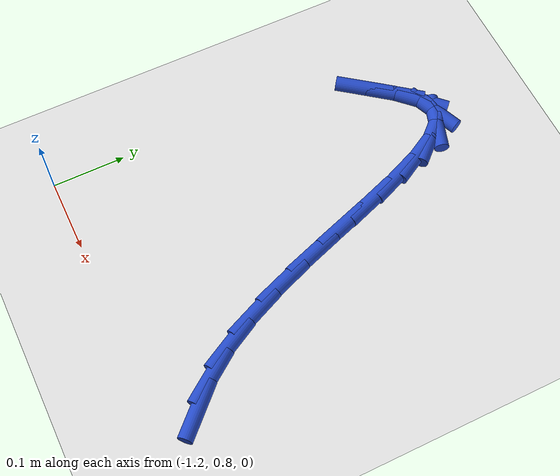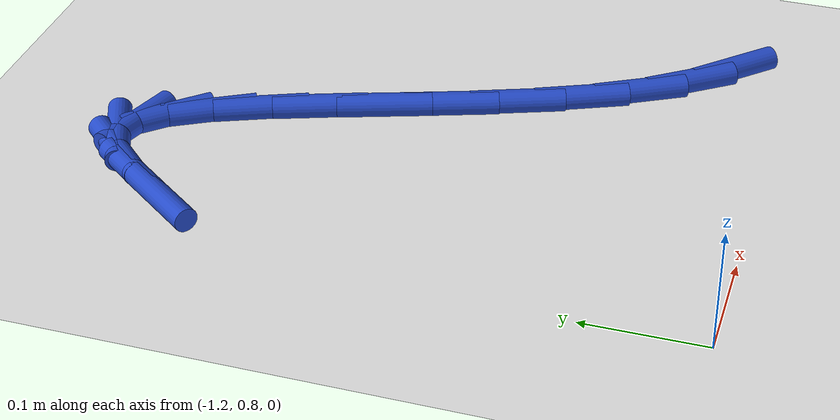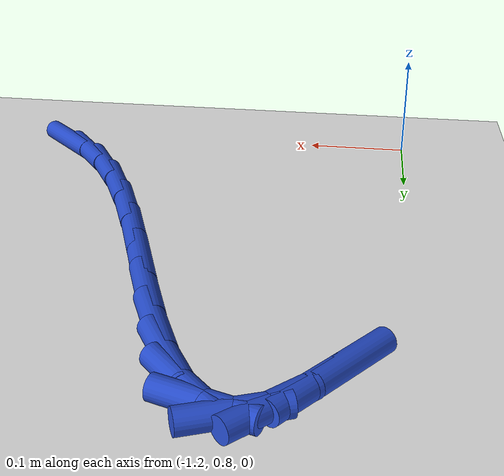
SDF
<sdf version="1.6">
 <world name="default">
  <model name="ground_plane">
   <static>1</static>
   <link name="link">
    <collision name="collision">
     <geometry><plane><normal>0 0 1</normal><size>100 100</size></plane></geometry>
     <surface><friction><ode><mu>100</mu><mu2>50</mu2></ode></friction></surface>
    </collision>
    <visual name="visual">
     <cast_shadows>0</cast_shadows>
     <geometry><plane><normal>0 0 1</normal><size>100 100</size></plane></geometry>
     <material>
      <script><uri>file://media/materials/scripts/gazebo.material</uri><name>Gazebo/WhiteGlow</name></script>
     </material>
    </visual>
   </link>
  </model>
  <model name="line">
   <link name="link_32">
    <pose>-0.8336543651550772 0.8481027196171774 0.01 0 1.57 -0.79891214269424</pose>
    <collision name="collision">
     <geometry><cylinder><radius>0.01</radius><length>0.08</length></cylinder></geometry>
    </collision>
    <visual name="visual">
     <material>
      <script><name>Gazebo/Blue</name><uri>file://media/materials/scripts/gazebo.material</uri></script>
     </material>
     <geometry><cylinder><radius>0.01</radius><length>0.08</length></cylinder></geometry>
    </visual>
   </link>
   <link name="link_33">
    <pose>-0.8642289517151212 0.8795150470484041 0.01 0 1.57 -0.9451556518203059</pose>
    <collision name="collision">
     <geometry><cylinder><radius>0.01</radius><length>0.08</length></cylinder></geometry>
    </collision>
    <visual name="visual">
     <material>
      <script><name>Gazebo/Blue</name><uri>file://media/materials/scripts/gazebo.material</uri></script>
     </material>
     <geometry><cylinder><radius>0.01</radius><length>0.08</length></cylinder></geometry>
    </visual>
   </link>
   <link name="link_34">
    <pose>-0.8918520325826715 0.9177498512966816 0.01 0 1.57 -1.0721236686585107</pose>
    <collision name="collision">
     <geometry><cylinder><radius>0.01</radius><length>0.08</length></cylinder></geometry>
    </collision>
    <visual name="visual">
     <material>
      <script><name>Gazebo/Blue</name><uri>file://media/materials/scripts/gazebo.material</uri></script>
     </material>
     <geometry><cylinder><radius>0.01</radius><length>0.08</length></cylinder></geometry>
    </visual>
   </link>
   <link name="link_35">
    <pose>-0.9163970678294107 0.9628213260764397 0.01 0 1.57 -1.1572292377738818</pose>
    <collision name="collision">
     <geometry><cylinder><radius>0.01</radius><length>0.08</length></cylinder></geometry>
    </collision>
    <visual name="visual">
     <material>
      <script><name>Gazebo/Blue</name><uri>file://media/materials/scripts/gazebo.material</uri></script>
     </material>
     <geometry><cylinder><radius>0.01</radius><length>0.08</length></cylinder></geometry>
    </visual>
   </link>
   <link name="link_36">
    <pose>-0.9383060116720581 1.0127415935260686 0.01 0 1.57 -1.210077566266756</pose>
    <collision name="collision">
     <geometry><cylinder><radius>0.01</radius><length>0.08</length></cylinder></geometry>
    </collision>
    <visual name="visual">
     <material>
      <script><name>Gazebo/Blue</name><uri>file://media/materials/scripts/gazebo.material</uri></script>
     </material>
     <geometry><cylinder><radius>0.01</radius><length>0.08</length></cylinder></geometry>
    </visual>
   </link>
   <link name="link_37">
    <pose>-0.958104780886987 1.0652270839890587 0.01 0 1.57 -1.2384160266182476</pose>
    <collision name="collision">
     <geometry><cylinder><radius>0.01</radius><length>0.08</length></cylinder></geometry>
    </collision>
    <visual name="visual">
     <material>
      <script><name>Gazebo/Blue</name><uri>file://media/materials/scripts/gazebo.material</uri></script>
     </material>
     <geometry><cylinder><radius>0.01</radius><length>0.08</length></cylinder></geometry>
    </visual>
   </link>
   <link name="link_38">
    <pose>-0.9763192922505707 1.117994227808902 0.01 0 1.57 -1.2448954530257224</pose>
    <collision name="collision">
     <geometry><cylinder><radius>0.01</radius><length>0.08</length></cylinder></geometry>
    </collision>
    <visual name="visual">
     <material>
      <script><name>Gazebo/Blue</name><uri>file://media/materials/scripts/gazebo.material</uri></script>
     </material>
     <geometry><cylinder><radius>0.01</radius><length>0.08</length></cylinder></geometry>
    </visual>
   </link>
   <link name="link_39">
    <pose>-0.9934754625391832 1.1687594553290894 0.01 0 1.57 -1.2273176029879977</pose>
    <collision name="collision">
     <geometry><cylinder><radius>0.01</radius><length>0.08</length></cylinder></geometry>
    </collision>
    <visual name="visual">
     <material>
      <script><name>Gazebo/Blue</name><uri>file://media/materials/scripts/gazebo.material</uri></script>
     </material>
     <geometry><cylinder><radius>0.01</radius><length>0.08</length></cylinder></geometry>
    </visual>
   </link>
   <link name="link_40">
    <pose>-1.010099208529197 1.2152391968931118 0.01 0 1.57 -1.1762659978039807</pose>
    <collision name="collision">
     <geometry><cylinder><radius>0.01</radius><length>0.08</length></cylinder></geometry>
    </collision>
    <visual name="visual">
     <material>
      <script><name>Gazebo/Blue</name><uri>file://media/materials/scripts/gazebo.material</uri></script>
     </material>
     <geometry><cylinder><radius>0.01</radius><length>0.08</length></cylinder></geometry>
    </visual>
   </link>
   <link name="link_41">
    <pose>-1.0267164469969865 1.2551498828444614 0.01 0 1.57 -1.066601585094985</pose>
    <collision name="collision">
     <geometry><cylinder><radius>0.01</radius><length>0.08</length></cylinder></geometry>
    </collision>
    <visual name="visual">
     <material>
      <script><name>Gazebo/Blue</name><uri>file://media/materials/scripts/gazebo.material</uri></script>
     </material>
     <geometry><cylinder><radius>0.01</radius><length>0.08</length></cylinder></geometry>
    </visual>
   </link>
   <link name="link_42">
    <pose>-1.0438530947189246 1.2862079435266291 0.01 0 1.57 -0.8310283232203267</pose>
    <collision name="collision">
     <geometry><cylinder><radius>0.01</radius><length>0.08</length></cylinder></geometry>
    </collision>
    <visual name="visual">
     <material>
      <script><name>Gazebo/Blue</name><uri>file://media/materials/scripts/gazebo.material</uri></script>
     </material>
     <geometry><cylinder><radius>0.01</radius><length>0.08</length></cylinder></geometry>
    </visual>
   </link>
   <link name="link_43">
    <pose>-1.062035068471385 1.3061298092831062 0.01 0 1.57 -0.31799591171986696</pose>
    <collision name="collision">
     <geometry><cylinder><radius>0.01</radius><length>0.08</length></cylinder></geometry>
    </collision>
    <visual name="visual">
     <material>
      <script><name>Gazebo/Blue</name><uri>file://media/materials/scripts/gazebo.material</uri></script>
     </material>
     <geometry><cylinder><radius>0.01</radius><length>0.08</length></cylinder></geometry>
    </visual>
   </link>
   <link name="link_44">
    <pose>-1.0817882850307412 1.3126319104573838 0.01 0 1.57 0.39846431778704694</pose>
    <collision name="collision">
     <geometry><cylinder><radius>0.01</radius><length>0.08</length></cylinder></geometry>
    </collision>
    <visual name="visual">
     <material>
      <script><name>Gazebo/Blue</name><uri>file://media/materials/scripts/gazebo.material</uri></script>
     </material>
     <geometry><cylinder><radius>0.01</radius><length>0.08</length></cylinder></geometry>
    </visual>
   </link>
   <link name="link_45">
    <pose>-1.1036383635805154 1.303433372615789 0.01 0 1.57 0.8002993296854736</pose>
    <collision name="collision">
     <geometry><cylinder><radius>0.01</radius><length>0.08</length></cylinder></geometry>
    </collision>
    <visual name="visual">
     <material>
      <script><name>Gazebo/Blue</name><uri>file://media/materials/scripts/gazebo.material</uri></script>
     </material>
     <geometry><cylinder><radius>0.01</radius><length>0.08</length></cylinder></geometry>
    </visual>
   </link>
   <link name="link_46">
    <pose>-1.1278658517911588 1.2784728717458058 0.01 0 1.57 0.9220185095705806</pose>
    <collision name="collision">
     <geometry><cylinder><radius>0.01</radius><length>0.08</length></cylinder></geometry>
    </collision>
    <visual name="visual">
     <material>
      <script><name>Gazebo/Blue</name><uri>file://media/materials/scripts/gazebo.material</uri></script>
     </material>
     <geometry><cylinder><radius>0.01</radius><length>0.08</length></cylinder></geometry>
    </visual>
   </link>
   <link name="link_47">
    <pose>-1.1540627636269758 1.2439249586549355 0.01 0 1.57 0.9276211665145389</pose>
    <collision name="collision">
     <geometry><cylinder><radius>0.01</radius><length>0.08</length></cylinder></geometry>
    </collision>
    <visual name="visual">
     <material>
      <script><name>Gazebo/Blue</name><uri>file://media/materials/scripts/gazebo.material</uri></script>
     </material>
     <geometry><cylinder><radius>0.01</radius><length>0.08</length></cylinder></geometry>
    </visual>
   </link>
  </model>
 </world>
</sdf>
